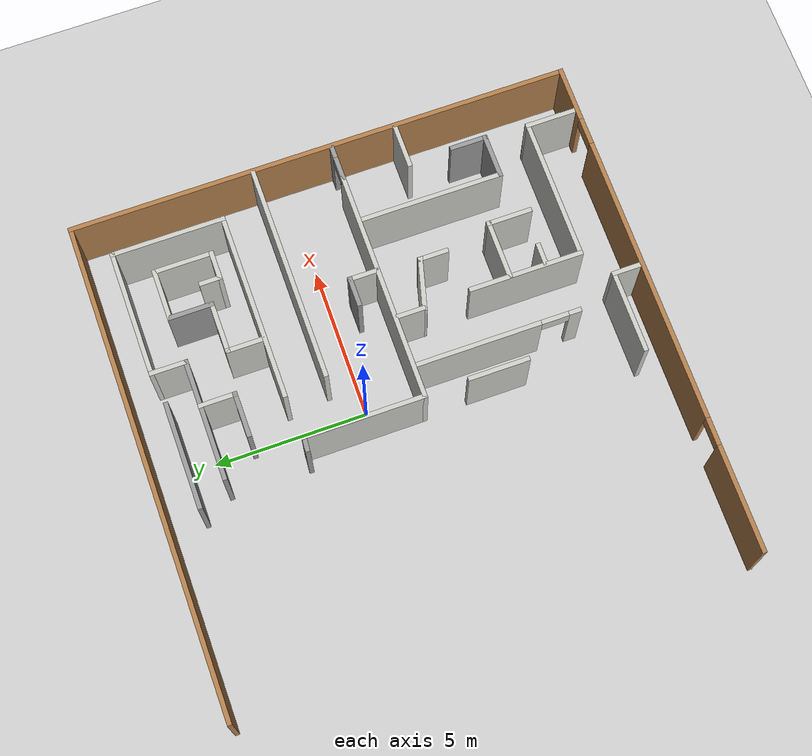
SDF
<sdf version="1.7">
 <world name="default">
  <model name="ground_plane">
   <static>1</static>
   <link name="link">
    <collision name="collision">
     <geometry><plane><normal>0 0 1</normal><size>100 100</size></plane></geometry>
     <surface>
      <contact><collide_bitmask>65535</collide_bitmask></contact>
      <friction><ode><mu>100</mu><mu2>50</mu2></ode></friction>
     </surface>
    </collision>
    <visual name="visual">
     <cast_shadows>0</cast_shadows>
     <geometry><plane><normal>0 0 1</normal><size>100 100</size></plane></geometry>
     <material>
      <script><uri>file://media/materials/scripts/gazebo.material</uri><name>Gazebo/Grey</name></script>
     </material>
    </visual>
   </link>
  </model>
  <model name="maze">
   <pose>-0.272391 -1.26791 0 0 -0 0</pose>
   <link name="Wall_100">
    <collision name="Wall_100_Collision">
     <geometry><box><size>4.25 0.15 2.5</size></box></geometry>
     <pose>0 0 1.25 0 -0 0</pose>
    </collision>
    <visual name="Wall_100_Visual">
     <pose>0 0 1.25 0 -0 0</pose>
     <geometry><box><size>4.25 0.15 2.5</size></box></geometry>
     <material>
      <script><uri>file://media/materials/scripts/gazebo.material</uri><name>Gazebo/CeilingTiled</name></script>
      <ambient>1 1 1 1</ambient>
     </material>
     <meta><layer>0</layer></meta>
    </visual>
    <pose>5.02254 7.19124 0 0 -0 3.14159</pose>
   </link>
   <link name="Wall_101">
    <collision name="Wall_101_Collision">
     <geometry><box><size>1.25 0.15 2.5</size></box></geometry>
     <pose>0 0 1.25 0 -0 0</pose>
    </collision>
    <visual name="Wall_101_Visual">
     <pose>0 0 1.25 0 -0 0</pose>
     <geometry><box><size>1.25 0.15 2.5</size></box></geometry>
     <material>
      <script><uri>file://media/materials/scripts/gazebo.material</uri><name>Gazebo/CeilingTiled</name></script>
      <ambient>1 1 1 1</ambient>
     </material>
     <meta><layer>0</layer></meta>
    </visual>
    <pose>2.97254 6.64124 0 0 -0 -1.5708</pose>
   </link>
   <link name="Wall_102">
    <collision name="Wall_102_Collision">
     <geometry><box><size>4 0.15 2.5</size></box></geometry>
     <pose>0 0 1.25 0 -0 0</pose>
    </collision>
    <visual name="Wall_102_Visual">
     <pose>0 0 1.25 0 -0 0</pose>
     <geometry><box><size>4 0.15 2.5</size></box></geometry>
     <material>
      <script><uri>file://media/materials/scripts/gazebo.material</uri><name>Gazebo/Grey</name></script>
      <ambient>1 1 1 1</ambient>
     </material>
     <meta><layer>0</layer></meta>
    </visual>
    <pose>1.04754 6.09124 0 0 -0 3.14159</pose>
   </link>
   <link name="Wall_104">
    <collision name="Wall_104_Collision">
     <geometry><box><size>0.552996 0.15 2.5</size></box></geometry>
     <pose>0 0 1.25 0 -0 0</pose>
    </collision>
    <visual name="Wall_104_Visual">
     <pose>0 0 1.25 0 -0 0</pose>
     <geometry><box><size>0.552996 0.15 2.5</size></box></geometry>
     <material>
      <script><uri>file://media/materials/scripts/gazebo.material</uri><name>Gazebo/Grey</name></script>
      <ambient>1 1 1 1</ambient>
     </material>
     <meta><layer>0</layer></meta>
    </visual>
    <pose>-0.676594 3.47533 0 0 -0 -0.079079</pose>
   </link>
   <link name="Wall_106">
    <collision name="Wall_106_Collision">
     <geometry><box><size>1.25 0.15 2.5</size></box></geometry>
     <pose>0 0 1.25 0 -0 0</pose>
    </collision>
    <visual name="Wall_106_Visual">
     <pose>0 0 1.25 0 -0 0</pose>
     <geometry><box><size>1.25 0.15 2.5</size></box></geometry>
     <material>
      <script><uri>file://media/materials/scripts/gazebo.material</uri><name>Gazebo/CeilingTiled</name></script>
      <ambient>1 1 1 1</ambient>
     </material>
     <meta><layer>0</layer></meta>
    </visual>
    <pose>1.50004 5.54226 0 0 -0 -1.5708</pose>
   </link>
   <link name="Wall_107">
    <collision name="Wall_107_Collision">
     <geometry><box><size>1.5 0.15 2.5</size></box></geometry>
     <pose>0 0 1.25 0 -0 0</pose>
    </collision>
    <visual name="Wall_107_Visual">
     <pose>0 0 1.25 0 -0 0</pose>
     <geometry><box><size>1.5 0.15 2.5</size></box></geometry>
     <material>
      <script><uri>file://media/materials/scripts/gazebo.material</uri><name>Gazebo/Grey</name></script>
      <ambient>1 1 1 1</ambient>
     </material>
     <meta><layer>0</layer></meta>
    </visual>
    <pose>0.82504 4.99226 0 0 -0 3.14159</pose>
   </link>
   <link name="Wall_110">
    <collision name="Wall_110_Collision">
     <geometry><box><size>1.25 0.15 2.5</size></box></geometry>
     <pose>0 0 1.25 0 -0 0</pose>
    </collision>
    <visual name="Wall_110_Visual">
     <pose>0 0 1.25 0 -0 0</pose>
     <geometry><box><size>1.25 0.15 2.5</size></box></geometry>
     <material>
      <script><uri>file://media/materials/scripts/gazebo.material</uri><name>Gazebo/CeilingTiled</name></script>
      <ambient>1 1 1 1</ambient>
     </material>
     <meta><layer>0</layer></meta>
    </visual>
    <pose>2.8894 4.23018 0 0 -0 1.5708</pose>
   </link>
   <link name="Wall_111">
    <collision name="Wall_111_Collision">
     <geometry><box><size>1.75 0.15 2.5</size></box></geometry>
     <pose>0 0 1.25 0 -0 0</pose>
    </collision>
    <visual name="Wall_111_Visual">
     <pose>0 0 1.25 0 -0 0</pose>
     <geometry><box><size>1.75 0.15 2.5</size></box></geometry>
     <material>
      <script><uri>file://media/materials/scripts/gazebo.material</uri><name>Gazebo/CeilingTiled</name></script>
      <ambient>1 1 1 1</ambient>
     </material>
     <meta><layer>0</layer></meta>
    </visual>
    <pose>3.6894 4.78018 0 0 -0 0</pose>
   </link>
   <link name="Wall_112">
    <collision name="Wall_112_Collision">
     <geometry><box><size>1.5 0.15 2.5</size></box></geometry>
     <pose>0 0 1.25 0 -0 0</pose>
    </collision>
    <visual name="Wall_112_Visual">
     <pose>0 0 1.25 0 -0 0</pose>
     <geometry><box><size>1.5 0.15 2.5</size></box></geometry>
     <material>
      <script><uri>file://media/materials/scripts/gazebo.material</uri><name>Gazebo/Grey</name></script>
      <ambient>1 1 1 1</ambient>
     </material>
     <meta><layer>0</layer></meta>
    </visual>
    <pose>4.4894 5.45518 0 0 -0 1.5708</pose>
   </link>
   <link name="Wall_113">
    <collision name="Wall_113_Collision">
     <geometry><box><size>1.75 0.15 2.5</size></box></geometry>
     <pose>0 0 1.25 0 -0 0</pose>
    </collision>
    <visual name="Wall_113_Visual">
     <pose>0 0 1.25 0 -0 0</pose>
     <geometry><box><size>1.75 0.15 2.5</size></box></geometry>
     <material>
      <script><uri>file://media/materials/scripts/gazebo.material</uri><name>Gazebo/CeilingTiled</name></script>
      <ambient>1 1 1 1</ambient>
     </material>
     <meta><layer>0</layer></meta>
    </visual>
    <pose>5.2894 6.13018 0 0 -0 0</pose>
   </link>
   <link name="Wall_114">
    <collision name="Wall_114_Collision">
     <geometry><box><size>2 0.15 2.5</size></box></geometry>
     <pose>0 0 1.25 0 -0 0</pose>
    </collision>
    <visual name="Wall_114_Visual">
     <pose>0 0 1.25 0 -0 0</pose>
     <geometry><box><size>2 0.15 2.5</size></box></geometry>
     <material>
      <script><uri>file://media/materials/scripts/gazebo.material</uri><name>Gazebo/CeilingTiled</name></script>
      <ambient>1 1 1 1</ambient>
     </material>
     <meta><layer>0</layer></meta>
    </visual>
    <pose>6.0894 5.20518 0 0 -0 -1.5708</pose>
   </link>
   <link name="Wall_115">
    <collision name="Wall_115_Collision">
     <geometry><box><size>1 0.15 2.5</size></box></geometry>
     <pose>0 0 1.25 0 -0 0</pose>
    </collision>
    <visual name="Wall_115_Visual">
     <pose>0 0 1.25 0 -0 0</pose>
     <geometry><box><size>1 0.15 2.5</size></box></geometry>
     <material>
      <script><uri>file://media/materials/scripts/gazebo.material</uri><name>Gazebo/CeilingTiled</name></script>
      <ambient>1 1 1 1</ambient>
     </material>
     <meta><layer>0</layer></meta>
    </visual>
    <pose>5.6644 4.28018 0 0 -0 3.14159</pose>
   </link>
   <link name="Wall_116">
    <collision name="Wall_116_Collision">
     <geometry><box><size>0.75 0.15 2.5</size></box></geometry>
     <pose>0 0 1.25 0 -0 0</pose>
    </collision>
    <visual name="Wall_116_Visual">
     <pose>0 0 1.25 0 -0 0</pose>
     <geometry><box><size>0.75 0.15 2.5</size></box></geometry>
     <material>
      <script><uri>file://media/materials/scripts/gazebo.material</uri><name>Gazebo/CeilingTiled</name></script>
      <ambient>1 1 1 1</ambient>
     </material>
     <meta><layer>0</layer></meta>
    </visual>
    <pose>5.2394 4.58018 0 0 -0 1.5708</pose>
   </link>
   <link name="Wall_124">
    <collision name="Wall_124_Collision">
     <geometry><box><size>3.5 0.15 2.5</size></box></geometry>
     <pose>0 0 1.25 0 -0 0</pose>
    </collision>
    <visual name="Wall_124_Visual">
     <pose>0 0 1.25 0 -0 0</pose>
     <geometry><box><size>3.5 0.15 2.5</size></box></geometry>
     <material>
      <script><uri>file://media/materials/scripts/gazebo.material</uri><name>Gazebo/Grey</name></script>
      <ambient>1 1 1 1</ambient>
     </material>
     <meta><layer>0</layer></meta>
    </visual>
    <pose>0.20167 7.05546 0 0 -0 0</pose>
   </link>
   <link name="Wall_139">
    <collision name="Wall_139_Collision">
     <geometry><box><size>2 0.15 2.5</size></box></geometry>
     <pose>0 0 1.25 0 -0 0</pose>
    </collision>
    <visual name="Wall_139_Visual">
     <pose>0 0 1.25 0 -0 0</pose>
     <geometry><box><size>2 0.15 2.5</size></box></geometry>
     <material>
      <script><uri>file://media/materials/scripts/gazebo.material</uri><name>Gazebo/CeilingTiled</name></script>
      <ambient>1 1 1 1</ambient>
     </material>
     <meta><layer>0</layer></meta>
    </visual>
    <pose>-0.412619 -2.80451 0 0 -0 1.5708</pose>
   </link>
   <link name="Wall_16">
    <pose>7.67427 -0.390592 0 0 -0 3.14159</pose>
    <visual name="Wall_16_Visual_0">
     <pose>-0.405982 0 1.25 0 -0 0</pose>
     <geometry><box><size>0.438035 0.15 2.5</size></box></geometry>
     <material>
      <script><uri>file://media/materials/scripts/gazebo.material</uri><name>Gazebo/Grey</name></script>
      <ambient>1 1 1 1</ambient>
     </material>
     <meta><layer>0</layer></meta>
    </visual>
    <collision name="Wall_16_Collision_0">
     <geometry><box><size>0.438035 0.15 2.5</size></box></geometry>
     <pose>-0.405982 0 1.25 0 -0 0</pose>
    </collision>
    <visual name="Wall_16_Visual_1">
     <pose>0.219018 0 2.25 0 -0 0</pose>
     <geometry><box><size>0.811965 0.15 0.5</size></box></geometry>
     <material>
      <script><uri>file://media/materials/scripts/gazebo.material</uri><name>Gazebo/Grey</name></script>
      <ambient>1 1 1 1</ambient>
     </material>
     <meta><layer>0</layer></meta>
    </visual>
    <collision name="Wall_16_Collision_1">
     <geometry><box><size>0.811965 0.15 0.5</size></box></geometry>
     <pose>0.219018 0 2.25 0 -0 0</pose>
    </collision>
   </link>
   <link name="Wall_18">
    <collision name="Wall_18_Collision">
     <geometry><box><size>7.75 0.15 2.5</size></box></geometry>
     <pose>0 0 1.25 0 -0 0</pose>
    </collision>
    <visual name="Wall_18_Visual">
     <pose>0 0 1.25 0 -0 0</pose>
     <geometry><box><size>7.75 0.15 2.5</size></box></geometry>
     <material>
      <script><uri>file://media/materials/scripts/gazebo.material</uri><name>Gazebo/CeilingTiled</name></script>
      <ambient>1 1 1 1</ambient>
     </material>
     <meta><layer>0</layer></meta>
    </visual>
    <pose>3.32428 -0.390592 0 0 -0 3.14159</pose>
   </link>
   <link name="Wall_19">
    <collision name="Wall_19_Collision">
     <geometry><box><size>4 0.15 2.5</size></box></geometry>
     <pose>0 0 1.25 0 -0 0</pose>
    </collision>
    <visual name="Wall_19_Visual">
     <pose>0 0 1.25 0 -0 0</pose>
     <geometry><box><size>4 0.15 2.5</size></box></geometry>
     <material>
      <script><uri>file://media/materials/scripts/gazebo.material</uri><name>Gazebo/CeilingTiled</name></script>
      <ambient>1 1 1 1</ambient>
     </material>
     <meta><layer>0</layer></meta>
    </visual>
    <pose>-0.475725 1.53441 0 0 -0 1.5708</pose>
   </link>
   <link name="Wall_22">
    <collision name="Wall_22_Collision">
     <geometry><box><size>7.25 0.15 2.5</size></box></geometry>
     <pose>0 0 1.25 0 -0 0</pose>
    </collision>
    <visual name="Wall_22_Visual">
     <pose>0 0 1.25 0 -0 0</pose>
     <geometry><box><size>7.25 0.15 2.5</size></box></geometry>
     <material>
      <script><uri>file://media/materials/scripts/gazebo.material</uri><name>Gazebo/CeilingTiled</name></script>
      <ambient>1 1 1 1</ambient>
     </material>
     <meta><layer>0</layer></meta>
    </visual>
    <pose>4.727 2.21497 0 0 -0 3.14159</pose>
   </link>
   <link name="Wall_30">
    <collision name="Wall_30_Collision">
     <geometry><box><size>4.75 0.15 2.5</size></box></geometry>
     <pose>0 0 1.25 0 -0 0</pose>
    </collision>
    <visual name="Wall_30_Visual">
     <pose>0 0 1.25 0 -0 0</pose>
     <geometry><box><size>4.75 0.15 2.5</size></box></geometry>
     <material>
      <script><uri>file://media/materials/scripts/gazebo.material</uri><name>Gazebo/CeilingTiled</name></script>
      <ambient>1 1 1 1</ambient>
     </material>
     <meta><layer>0</layer></meta>
    </visual>
    <pose>5.59381 -2.77529 0 0 -0 -1.5708</pose>
   </link>
   <link name="Wall_31">
    <collision name="Wall_31_Collision">
     <geometry><box><size>1.5 0.15 2.5</size></box></geometry>
     <pose>0 0 1.25 0 -0 0</pose>
    </collision>
    <visual name="Wall_31_Visual">
     <pose>0 0 1.25 0 -0 0</pose>
     <geometry><box><size>1.5 0.15 2.5</size></box></geometry>
     <material>
      <script><uri>file://media/materials/scripts/gazebo.material</uri><name>Gazebo/Grey</name></script>
      <ambient>1 1 1 1</ambient>
     </material>
     <meta><layer>0</layer></meta>
    </visual>
    <pose>6.26881 -5.07529 0 0 -0 0</pose>
   </link>
   <link name="Wall_34">
    <collision name="Wall_34_Collision">
     <geometry><box><size>1.5 0.15 2.5</size></box></geometry>
     <pose>0 0 1.25 0 -0 0</pose>
    </collision>
    <visual name="Wall_34_Visual">
     <pose>0 0 1.25 0 -0 0</pose>
     <geometry><box><size>1.5 0.15 2.5</size></box></geometry>
     <material>
      <script><uri>file://media/materials/scripts/gazebo.material</uri><name>Gazebo/CeilingTiled</name></script>
      <ambient>1 1 1 1</ambient>
     </material>
     <meta><layer>0</layer></meta>
    </visual>
    <pose>7.5452 -2.51516 0 0 -0 3.14159</pose>
   </link>
   <link name="Wall_36">
    <collision name="Wall_36_Collision">
     <geometry><box><size>1.25 0.15 2.5</size></box></geometry>
     <pose>0 0 1.25 0 -0 0</pose>
    </collision>
    <visual name="Wall_36_Visual">
     <pose>0 0 1.25 0 -0 0</pose>
     <geometry><box><size>1.25 0.15 2.5</size></box></geometry>
     <material>
      <script><uri>file://media/materials/scripts/gazebo.material</uri><name>Gazebo/Grey</name></script>
      <ambient>1 1 1 1</ambient>
     </material>
     <meta><layer>0</layer></meta>
    </visual>
    <pose>6.94381 -4.52529 0 0 -0 1.5708</pose>
   </link>
   <link name="Wall_48">
    <collision name="Wall_48_Collision">
     <geometry><box><size>1 0.15 2.5</size></box></geometry>
     <pose>0 0 1.25 0 -0 0</pose>
    </collision>
    <visual name="Wall_48_Visual">
     <pose>0 0 1.25 0 -0 0</pose>
     <geometry><box><size>1 0.15 2.5</size></box></geometry>
     <material>
      <script><uri>file://media/materials/scripts/gazebo.material</uri><name>Gazebo/CeilingTiled</name></script>
      <ambient>1 1 1 1</ambient>
     </material>
     <meta><layer>0</layer></meta>
    </visual>
    <pose>2.19292 -0.914441 0 0 -0 1.5708</pose>
   </link>
   <link name="Wall_50">
    <collision name="Wall_50_Collision">
     <geometry><box><size>1.75 0.15 2.5</size></box></geometry>
     <pose>0 0 1.25 0 -0 0</pose>
    </collision>
    <visual name="Wall_50_Visual">
     <pose>0 0 1.25 0 -0 0</pose>
     <geometry><box><size>1.75 0.15 2.5</size></box></geometry>
     <material>
      <script><uri>file://media/materials/scripts/gazebo.material</uri><name>Gazebo/CeilingTiled</name></script>
      <ambient>1 1 1 1</ambient>
     </material>
     <meta><layer>0</layer></meta>
    </visual>
    <pose>2.96566 -1.5465 0 0 -0 -0.261799</pose>
   </link>
   <link name="Wall_51">
    <collision name="Wall_51_Collision">
     <geometry><box><size>1 0.15 2.5</size></box></geometry>
     <pose>0 0 1.25 0 -0 0</pose>
    </collision>
    <visual name="Wall_51_Visual">
     <pose>0 0 1.25 0 -0 0</pose>
     <geometry><box><size>1 0.15 2.5</size></box></geometry>
     <material>
      <script><uri>file://media/materials/scripts/gazebo.material</uri><name>Gazebo/CeilingTiled</name></script>
      <ambient>1 1 1 1</ambient>
     </material>
     <meta><layer>0</layer></meta>
    </visual>
    <pose>3.7384 -2.17855 0 0 -0 -1.5708</pose>
   </link>
   <link name="Wall_54">
    <collision name="Wall_54_Collision">
     <geometry><box><size>1 0.15 2.5</size></box></geometry>
     <pose>0 0 1.25 0 -0 0</pose>
    </collision>
    <visual name="Wall_54_Visual">
     <pose>0 0 1.25 0 -0 0</pose>
     <geometry><box><size>1 0.15 2.5</size></box></geometry>
     <material>
      <script><uri>file://media/materials/scripts/gazebo.material</uri><name>Gazebo/CeilingTiled</name></script>
      <ambient>1 1 1 1</ambient>
     </material>
     <meta><layer>0</layer></meta>
    </visual>
    <pose>3.8393 0.0842 0 0 -0 1.5708</pose>
   </link>
   <link name="Wall_55">
    <collision name="Wall_55_Collision">
     <geometry><box><size>1 0.15 2.5</size></box></geometry>
     <pose>0 0 1.25 0 -0 0</pose>
    </collision>
    <visual name="Wall_55_Visual">
     <pose>0 0 1.25 0 -0 0</pose>
     <geometry><box><size>1 0.15 2.5</size></box></geometry>
     <material>
      <script><uri>file://media/materials/scripts/gazebo.material</uri><name>Gazebo/Grey</name></script>
      <ambient>1 1 1 1</ambient>
     </material>
     <meta><layer>0</layer></meta>
    </visual>
    <pose>3.4143 0.5092 0 0 -0 3.14159</pose>
   </link>
   <link name="Wall_57">
    <collision name="Wall_57_Collision">
     <geometry><box><size>3.75 0.15 2.5</size></box></geometry>
     <pose>0 0 1.25 0 -0 0</pose>
    </collision>
    <visual name="Wall_57_Visual">
     <pose>0 0 1.25 0 -0 0</pose>
     <geometry><box><size>3.75 0.15 2.5</size></box></geometry>
     <material>
      <script><uri>file://media/materials/scripts/gazebo.material</uri><name>Gazebo/CeilingTiled</name></script>
      <ambient>1 1 1 1</ambient>
     </material>
     <meta><layer>0</layer></meta>
    </visual>
    <pose>2.2746 -4.70046 0 0 -0 -1.5708</pose>
   </link>
   <link name="Wall_58">
    <collision name="Wall_58_Collision">
     <geometry><box><size>4.75 0.15 2.5</size></box></geometry>
     <pose>0 0 1.25 0 -0 0</pose>
    </collision>
    <visual name="Wall_58_Visual">
     <pose>0 0 1.25 0 -0 0</pose>
     <geometry><box><size>4.75 0.15 2.5</size></box></geometry>
     <material>
      <script><uri>file://media/materials/scripts/gazebo.material</uri><name>Gazebo/CeilingTiled</name></script>
      <ambient>1 1 1 1</ambient>
     </material>
     <meta><layer>0</layer></meta>
    </visual>
    <pose>4.5746 -6.50046 0 0 -0 0</pose>
   </link>
   <link name="Wall_59">
    <collision name="Wall_59_Collision">
     <geometry><box><size>1.75 0.15 2.5</size></box></geometry>
     <pose>0 0 1.25 0 -0 0</pose>
    </collision>
    <visual name="Wall_59_Visual">
     <pose>0 0 1.25 0 -0 0</pose>
     <geometry><box><size>1.75 0.15 2.5</size></box></geometry>
     <material>
      <script><uri>file://media/materials/scripts/gazebo.material</uri><name>Gazebo/CeilingTiled</name></script>
      <ambient>1 1 1 1</ambient>
     </material>
     <meta><layer>0</layer></meta>
    </visual>
    <pose>6.8746 -7.30046 0 0 -0 -1.5708</pose>
   </link>
   <link name="Wall_6">
    <collision name="Wall_6_Collision">
     <geometry><box><size>16.25 0.15 2.5</size></box></geometry>
     <pose>0 0 1.25 0 -0 0</pose>
    </collision>
    <visual name="Wall_6_Visual">
     <pose>0 0 1.25 0 -0 0</pose>
     <geometry><box><size>16.25 0.15 2.5</size></box></geometry>
     <material>
      <script><uri>file://media/materials/scripts/gazebo.material</uri><name>Gazebo/Wood</name></script>
      <ambient>1 1 1 1</ambient>
     </material>
     <meta><layer>0</layer></meta>
    </visual>
    <pose>0.256002 8.175 0 0 -0 0</pose>
   </link>
   <link name="Wall_62">
    <collision name="Wall_62_Collision">
     <geometry><box><size>2 0.15 2.5</size></box></geometry>
     <pose>0 0 1.25 0 -0 0</pose>
    </collision>
    <visual name="Wall_62_Visual">
     <pose>0 0 1.25 0 -0 0</pose>
     <geometry><box><size>2 0.15 2.5</size></box></geometry>
     <material>
      <script><uri>file://media/materials/scripts/gazebo.material</uri><name>Gazebo/CeilingTiled</name></script>
      <ambient>1 1 1 1</ambient>
     </material>
     <meta><layer>0</layer></meta>
    </visual>
    <pose>3.2214 -4.16578 0 0 -0 3.14159</pose>
   </link>
   <link name="Wall_69">
    <collision name="Wall_69_Collision">
     <geometry><box><size>1.5 0.15 2.5</size></box></geometry>
     <pose>0 0 1.25 0 -0 0</pose>
    </collision>
    <visual name="Wall_69_Visual">
     <pose>0 0 1.25 0 -0 0</pose>
     <geometry><box><size>1.5 0.15 2.5</size></box></geometry>
     <material>
      <script><uri>file://media/materials/scripts/gazebo.material</uri><name>Gazebo/CeilingTiled</name></script>
      <ambient>1 1 1 1</ambient>
     </material>
     <meta><layer>0</layer></meta>
    </visual>
    <pose>4.1464 -4.84078 0 0 -0 -1.5708</pose>
   </link>
   <link name="Wall_7">
    <collision name="Wall_7_Collision">
     <geometry><box><size>16.5 0.15 2.5</size></box></geometry>
     <pose>0 0 1.25 0 -0 0</pose>
    </collision>
    <visual name="Wall_7_Visual">
     <pose>0 0 1.25 0 -0 0</pose>
     <geometry><box><size>16.5 0.15 2.5</size></box></geometry>
     <material>
      <script><uri>file://media/materials/scripts/gazebo.material</uri><name>Gazebo/Wood</name></script>
      <ambient>1 1 1 1</ambient>
     </material>
     <meta><layer>0</layer></meta>
    </visual>
    <pose>8.306 -0 0 0 -0 -1.5708</pose>
   </link>
   <link name="Wall_71">
    <collision name="Wall_71_Collision">
     <geometry><box><size>0.75 0.15 2.5</size></box></geometry>
     <pose>0 0 1.25 0 -0 0</pose>
    </collision>
    <visual name="Wall_71_Visual">
     <pose>0 0 1.25 0 -0 0</pose>
     <geometry><box><size>0.75 0.15 2.5</size></box></geometry>
     <material>
      <script><uri>file://media/materials/scripts/gazebo.material</uri><name>Gazebo/CeilingTiled</name></script>
      <ambient>1 1 1 1</ambient>
     </material>
     <meta><layer>0</layer></meta>
    </visual>
    <pose>2.63633 -5.36134 0 0 -0 3.14159</pose>
   </link>
   <link name="Wall_74">
    <pose>0.538086 -3.10452 0 0 -0 -1.5708</pose>
    <visual name="Wall_74_Visual_0">
     <pose>-0.655728 0 1.25 0 -0 0</pose>
     <geometry><box><size>4.18854 0.15 2.5</size></box></geometry>
     <material>
      <script><uri>file://media/materials/scripts/gazebo.material</uri><name>Gazebo/CeilingTiled</name></script>
      <ambient>1 1 1 1</ambient>
     </material>
     <meta><layer>0</layer></meta>
    </visual>
    <collision name="Wall_74_Collision_0">
     <geometry><box><size>4.18854 0.15 2.5</size></box></geometry>
     <pose>-0.655728 0 1.25 0 -0 0</pose>
    </collision>
    <visual name="Wall_74_Visual_1">
     <pose>2.54427 0 1.25 0 -0 0</pose>
     <geometry><box><size>0.411456 0.15 2.5</size></box></geometry>
     <material>
      <script><uri>file://media/materials/scripts/gazebo.material</uri><name>Gazebo/CeilingTiled</name></script>
      <ambient>1 1 1 1</ambient>
     </material>
     <meta><layer>0</layer></meta>
    </visual>
    <collision name="Wall_74_Collision_1">
     <geometry><box><size>0.411456 0.15 2.5</size></box></geometry>
     <pose>2.54427 0 1.25 0 -0 0</pose>
    </collision>
    <visual name="Wall_74_Visual_2">
     <pose>1.88854 0 2.25 0 -0 0</pose>
     <geometry><box><size>0.9 0.15 0.5</size></box></geometry>
     <material>
      <script><uri>file://media/materials/scripts/gazebo.material</uri><name>Gazebo/CeilingTiled</name></script>
      <ambient>1 1 1 1</ambient>
     </material>
     <meta><layer>0</layer></meta>
    </visual>
    <collision name="Wall_74_Collision_2">
     <geometry><box><size>0.9 0.15 0.5</size></box></geometry>
     <pose>1.88854 0 2.25 0 -0 0</pose>
    </collision>
   </link>
   <link name="Wall_79">
    <collision name="Wall_79_Collision">
     <geometry><box><size>1 0.15 2.5</size></box></geometry>
     <pose>0 0 1.25 0 -0 0</pose>
    </collision>
    <visual name="Wall_79_Visual">
     <pose>0 0 1.25 0 -0 0</pose>
     <geometry><box><size>1 0.15 2.5</size></box></geometry>
     <material>
      <script><uri>file://media/materials/scripts/gazebo.material</uri><name>Gazebo/CeilingTiled</name></script>
      <ambient>1 1 1 1</ambient>
     </material>
     <meta><layer>0</layer></meta>
    </visual>
    <pose>1.29182 -7.6565 0 0 -0 1.5708</pose>
   </link>
   <link name="Wall_8">
    <pose>0.006002 -8.175 0 0 -0 3.14159</pose>
    <visual name="Wall_8_Visual_0">
     <pose>-7.44744 0 1.25 0 -0 0</pose>
     <geometry><box><size>1.85512 0.15 2.5</size></box></geometry>
     <material>
      <script><uri>file://media/materials/scripts/gazebo.material</uri><name>Gazebo/Wood</name></script>
      <ambient>1 1 1 1</ambient>
     </material>
     <meta><layer>0</layer></meta>
    </visual>
    <collision name="Wall_8_Collision_0">
     <geometry><box><size>1.85512 0.15 2.5</size></box></geometry>
     <pose>-7.44744 0 1.25 0 -0 0</pose>
    </collision>
    <visual name="Wall_8_Visual_1">
     <pose>-0.820361 0 1.25 0 -0 0</pose>
     <geometry><box><size>9.59905 0.15 2.5</size></box></geometry>
     <material>
      <script><uri>file://media/materials/scripts/gazebo.material</uri><name>Gazebo/Wood</name></script>
      <ambient>1 1 1 1</ambient>
     </material>
     <meta><layer>0</layer></meta>
    </visual>
    <collision name="Wall_8_Collision_1">
     <geometry><box><size>9.59905 0.15 2.5</size></box></geometry>
     <pose>-0.820361 0 1.25 0 -0 0</pose>
    </collision>
    <visual name="Wall_8_Visual_2">
     <pose>6.62708 0 1.25 0 -0 0</pose>
     <geometry><box><size>3.49584 0.15 2.5</size></box></geometry>
     <material>
      <script><uri>file://media/materials/scripts/gazebo.material</uri><name>Gazebo/Wood</name></script>
      <ambient>1 1 1 1</ambient>
     </material>
     <meta><layer>0</layer></meta>
    </visual>
    <collision name="Wall_8_Collision_2">
     <geometry><box><size>3.49584 0.15 2.5</size></box></geometry>
     <pose>6.62708 0 1.25 0 -0 0</pose>
    </collision>
    <visual name="Wall_8_Visual_3">
     <pose>-6.06989 0 2.25 0 -0 0</pose>
     <geometry><box><size>0.9 0.15 0.5</size></box></geometry>
     <material>
      <script><uri>file://media/materials/scripts/gazebo.material</uri><name>Gazebo/Wood</name></script>
      <ambient>1 1 1 1</ambient>
     </material>
     <meta><layer>0</layer></meta>
    </visual>
    <collision name="Wall_8_Collision_3">
     <geometry><box><size>0.9 0.15 0.5</size></box></geometry>
     <pose>-6.06989 0 2.25 0 -0 0</pose>
    </collision>
    <visual name="Wall_8_Visual_4">
     <pose>4.42916 0 2.25 0 -0 0</pose>
     <geometry><box><size>0.9 0.15 0.5</size></box></geometry>
     <material>
      <script><uri>file://media/materials/scripts/gazebo.material</uri><name>Gazebo/Wood</name></script>
      <ambient>1 1 1 1</ambient>
     </material>
     <meta><layer>0</layer></meta>
    </visual>
    <collision name="Wall_8_Collision_4">
     <geometry><box><size>0.9 0.15 0.5</size></box></geometry>
     <pose>4.42916 0 2.25 0 -0 0</pose>
    </collision>
   </link>
   <link name="Wall_80">
    <collision name="Wall_80_Collision">
     <geometry><box><size>2.75 0.15 2.5</size></box></geometry>
     <pose>0 0 1.25 0 -0 0</pose>
    </collision>
    <visual name="Wall_80_Visual">
     <pose>0 0 1.25 0 -0 0</pose>
     <geometry><box><size>2.75 0.15 2.5</size></box></geometry>
     <material>
      <script><uri>file://media/materials/scripts/gazebo.material</uri><name>Gazebo/CeilingTiled</name></script>
      <ambient>1 1 1 1</ambient>
     </material>
     <meta><layer>0</layer></meta>
    </visual>
    <pose>-0.008176 -7.2315 0 0 -0 3.14159</pose>
   </link>
   <link name="Wall_98">
    <collision name="Wall_98_Collision">
     <geometry><box><size>6.25 0.15 2.5</size></box></geometry>
     <pose>0 0 1.25 0 -0 0</pose>
    </collision>
    <visual name="Wall_98_Visual">
     <pose>0 0 1.25 0 -0 0</pose>
     <geometry><box><size>6.25 0.15 2.5</size></box></geometry>
     <material>
      <script><uri>file://media/materials/scripts/gazebo.material</uri><name>Gazebo/CeilingTiled</name></script>
      <ambient>1 1 1 1</ambient>
     </material>
     <meta><layer>0</layer></meta>
    </visual>
    <pose>4.02254 3.59124 0 0 -0 0</pose>
   </link>
   <link name="Wall_99">
    <collision name="Wall_99_Collision">
     <geometry><box><size>3.75 0.15 2.5</size></box></geometry>
     <pose>0 0 1.25 0 -0 0</pose>
    </collision>
    <visual name="Wall_99_Visual">
     <pose>0 0 1.25 0 -0 0</pose>
     <geometry><box><size>3.75 0.15 2.5</size></box></geometry>
     <material>
      <script><uri>file://media/materials/scripts/gazebo.material</uri><name>Gazebo/CeilingTiled</name></script>
      <ambient>1 1 1 1</ambient>
     </material>
     <meta><layer>0</layer></meta>
    </visual>
    <pose>7.07254 5.39124 0 0 -0 1.5708</pose>
   </link>
   <static>1</static>
  </model>
 </world>
</sdf>
